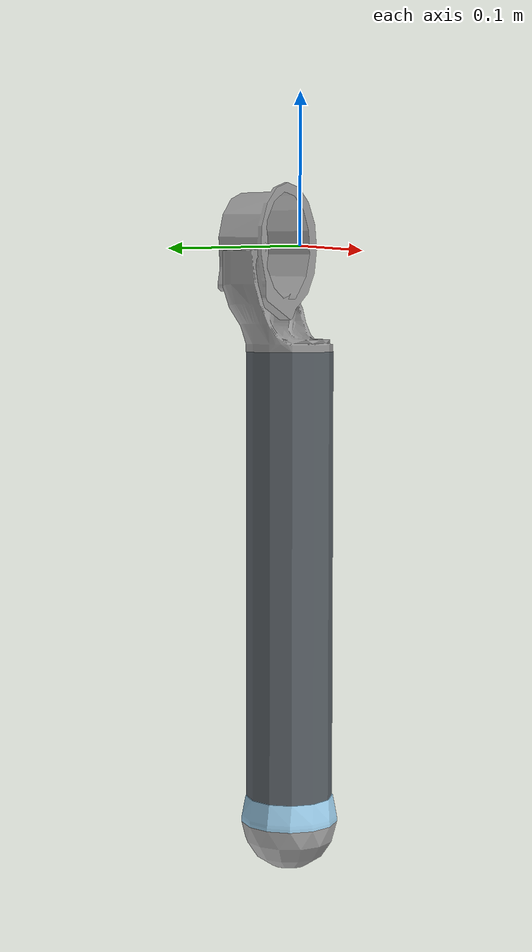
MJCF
<mujoco model="RIGHT_ELBOW_PITCH_LINK_413mm_LENGTH">
  <default>
    <default class="visual">
      <geom group="2" type="mesh" contype="0" conaffinity="0"/>
    </default>
    <default class="collision">
      <geom group="3" type="mesh"/>
    </default>
  </default>
  <asset>
    <material name="Opaque(165,165,165)" specular="0.5" shininess="0.5" rgba="0.647059 0.647059 0.647059 1.0"/>
    <material name="Opaque(153,153,153)" specular="0.5" shininess="0.5" rgba="0.600000 0.600000 0.600000 1.0"/>
    <material name="Opaque(89,96,102)" specular="0.5" shininess="0.5" rgba="0.349020 0.376471 0.400000 1.0"/>
    <material name="Opaque(157,207,237)" specular="0.5" shininess="0.5" rgba="0.615686 0.811765 0.929412 1.0"/>
    <mesh file="RIGHT_ELBOW_PITCH_LINK_413mm_LENGTH_0.obj"/>
    <mesh file="RIGHT_ELBOW_PITCH_LINK_413mm_LENGTH_1.obj"/>
    <mesh file="RIGHT_ELBOW_PITCH_LINK_413mm_LENGTH_2.obj"/>
    <mesh file="RIGHT_ELBOW_PITCH_LINK_413mm_LENGTH_3.obj"/>
  </asset>
  <worldbody>
    <body name="RIGHT_ELBOW_PITCH_LINK_413mm_LENGTH">
      <geom mesh="RIGHT_ELBOW_PITCH_LINK_413mm_LENGTH_0" material="Opaque(157,207,237)" class="visual"/>
      <geom mesh="RIGHT_ELBOW_PITCH_LINK_413mm_LENGTH_1" material="Opaque(89,96,102)" class="visual"/>
      <geom mesh="RIGHT_ELBOW_PITCH_LINK_413mm_LENGTH_2" material="Opaque(153,153,153)" class="visual"/>
      <geom mesh="RIGHT_ELBOW_PITCH_LINK_413mm_LENGTH_3" material="Opaque(165,165,165)" class="visual"/>
      <geom mesh="RIGHT_ELBOW_PITCH_LINK_413mm_LENGTH_0" class="collision"/>
      <geom mesh="RIGHT_ELBOW_PITCH_LINK_413mm_LENGTH_1" class="collision"/>
      <geom mesh="RIGHT_ELBOW_PITCH_LINK_413mm_LENGTH_2" class="collision"/>
      <geom mesh="RIGHT_ELBOW_PITCH_LINK_413mm_LENGTH_3" class="collision"/>
    </body>
  </worldbody>
</mujoco>
